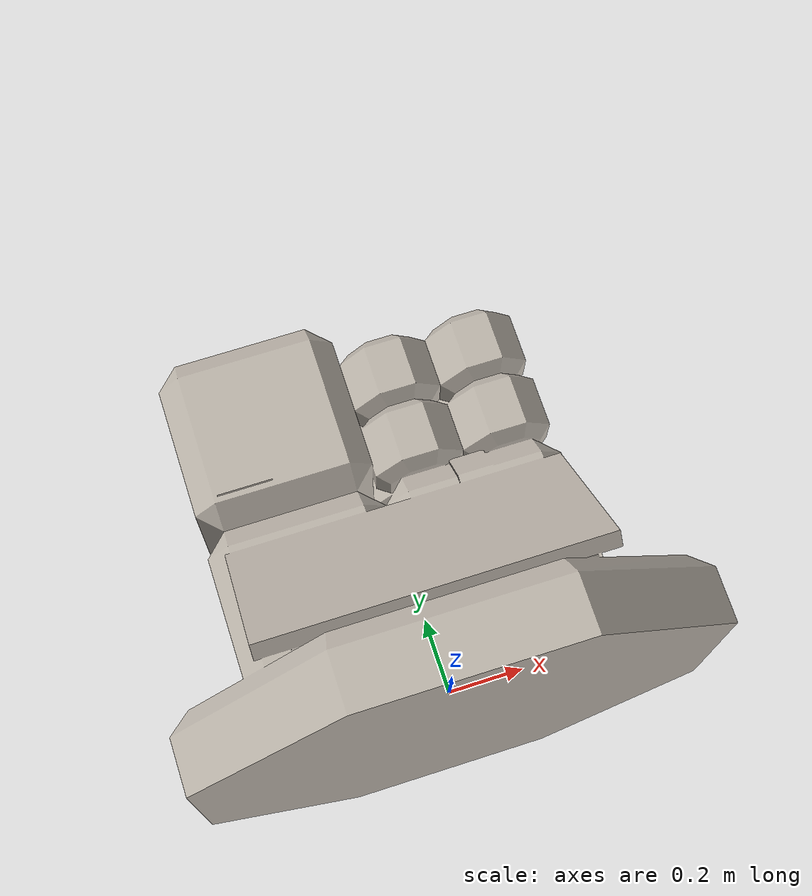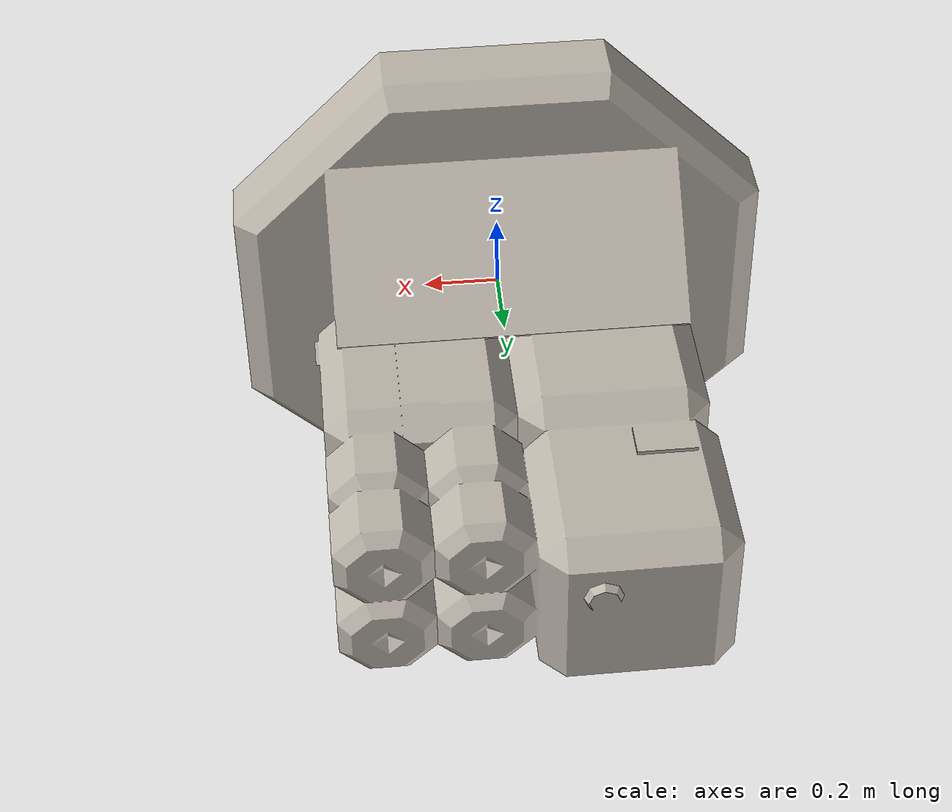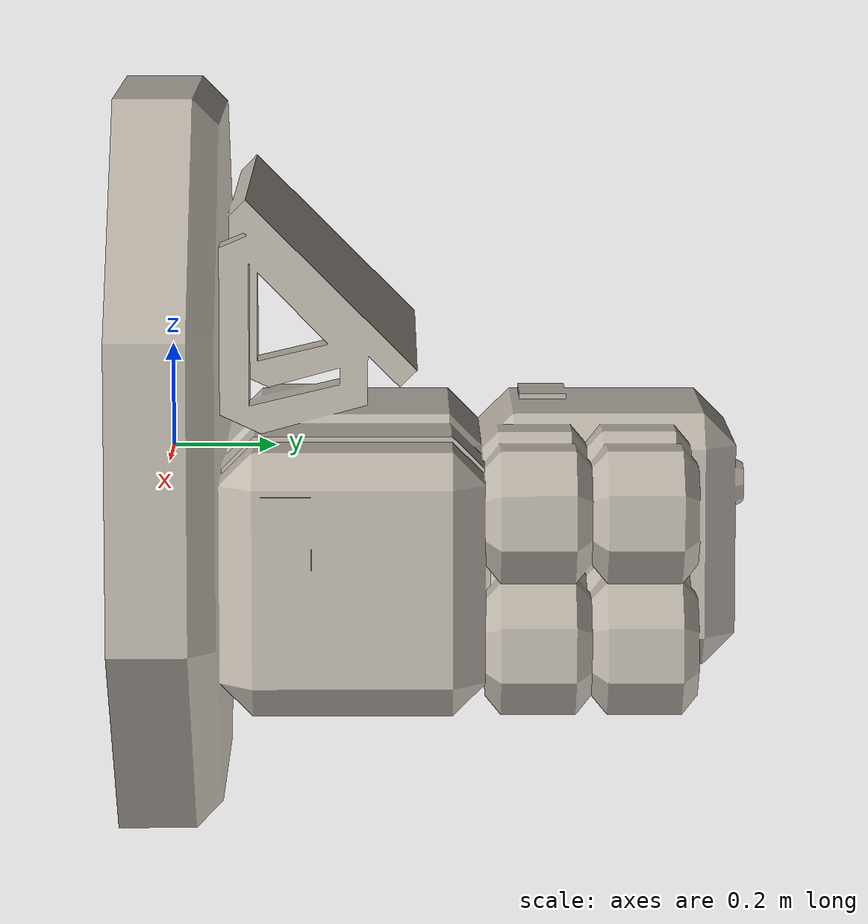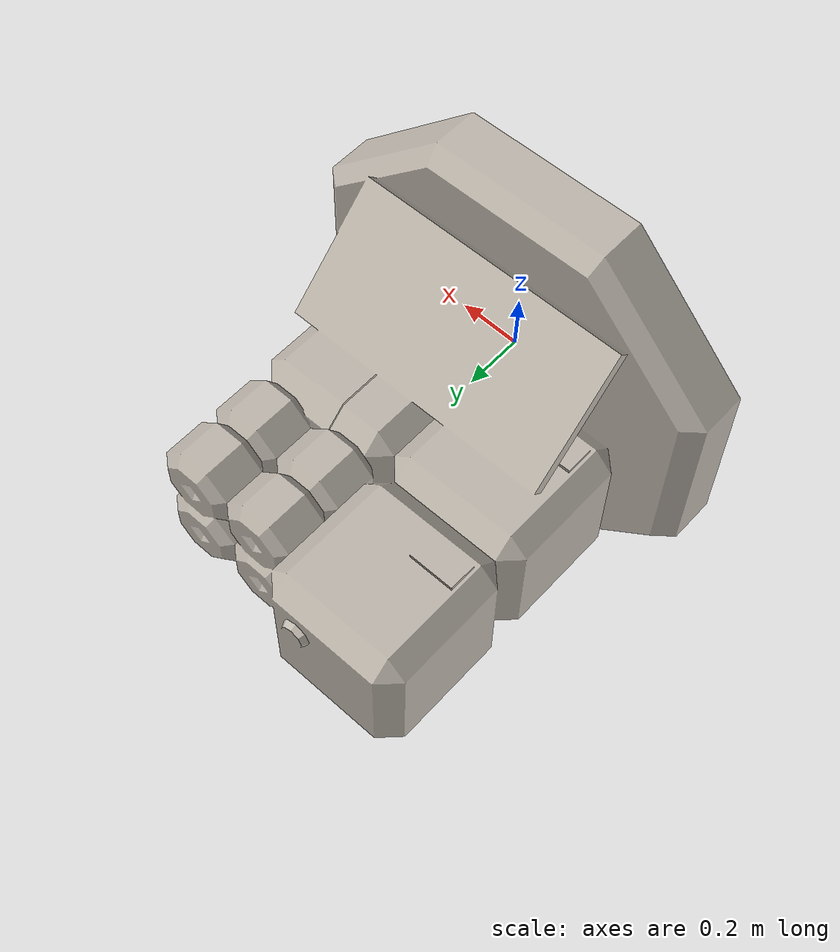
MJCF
<mujoco model="roofmodule_cargo_C">
  <default>
    <default class="visual">
      <geom group="2" type="mesh" contype="0" conaffinity="0" />
    </default>
    <default class="collision">
      <geom group="3" type="mesh" />
    </default>
  </default>
  <asset>
    <texture type="2d" name="roofmodule_cargo_C_spacebits_texture" file="spacebits_texture.png" />
    <material name="roofmodule_cargo_C_spacebits_texture" texture="roofmodule_cargo_C_spacebits_texture" specular="0.50196078" shininess="0.15999998099999999" />
    <mesh file="roofmodule_cargo_C.obj" name="roofmodule_cargo_C_roofmodule_cargo_C" />
  </asset>
  <worldbody>
    <body name="roofmodule_cargo_C">
      <geom material="roofmodule_cargo_C_spacebits_texture" mesh="roofmodule_cargo_C_roofmodule_cargo_C" class="visual" />
      <geom mesh="roofmodule_cargo_C_roofmodule_cargo_C" class="collision" />
    </body>
  </worldbody>
</mujoco>
